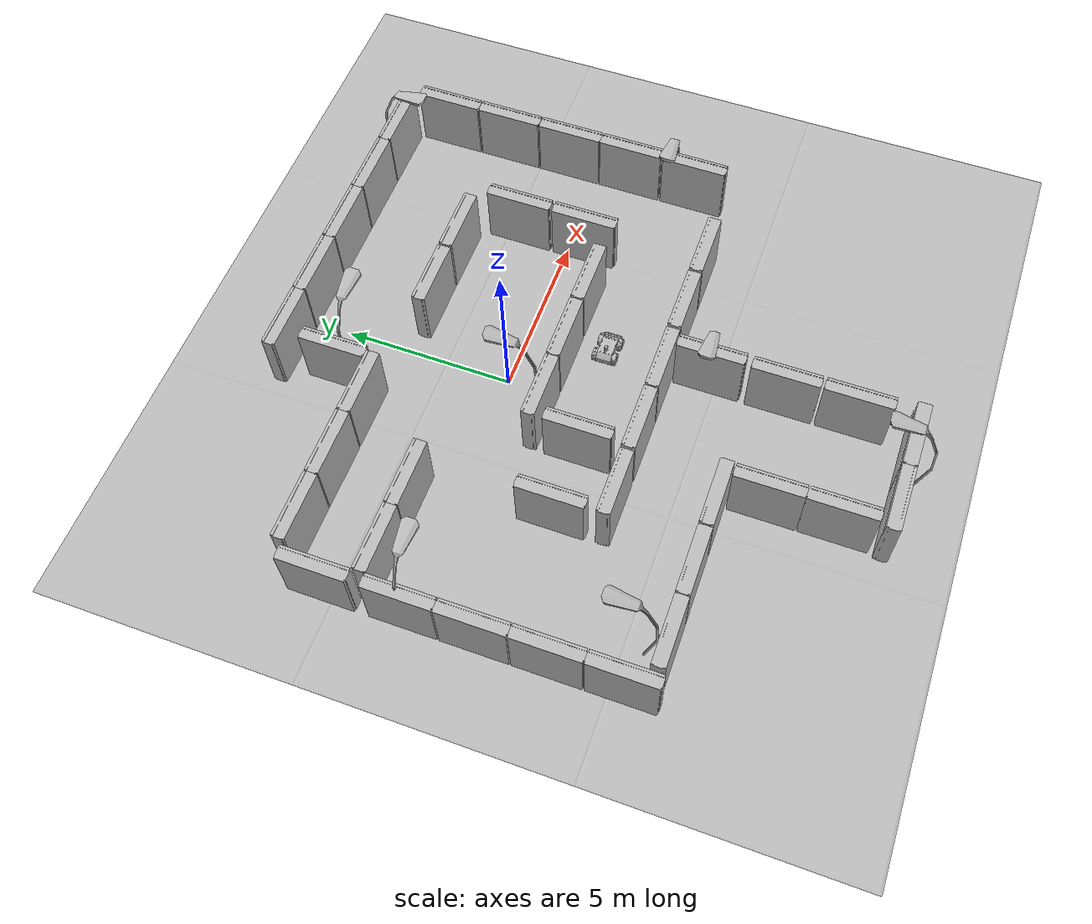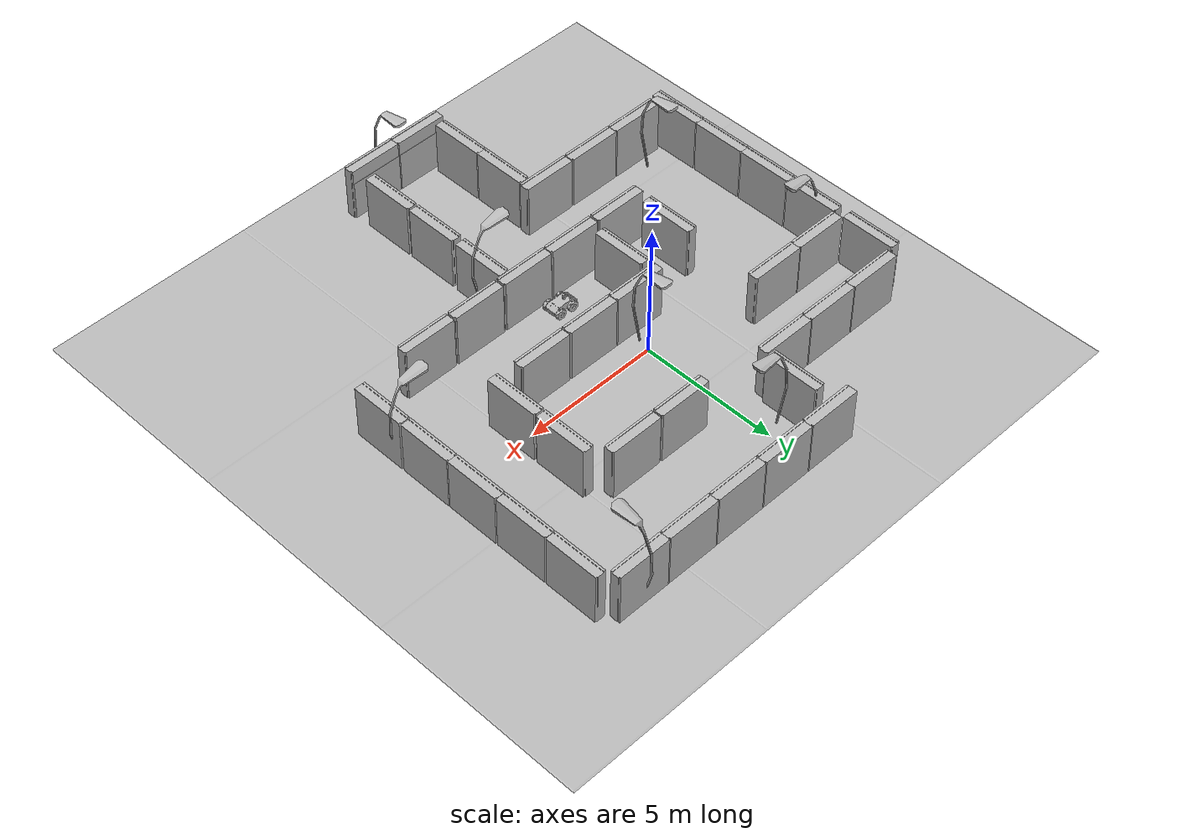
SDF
<sdf version="1.7">
 <world name="default">
  <gravity>0 0 -9.8</gravity>
  <magnetic_field>6e-06 2.3e-05 -4.2e-05</magnetic_field>
  <atmosphere type="adiabatic"/>
  <physics name="default_physics" default="0" type="ode">
   <max_step_size>0.001</max_step_size>
   <real_time_factor>1</real_time_factor>
   <real_time_update_rate>1000</real_time_update_rate>
  </physics>
  <scene><ambient>0.4 0.4 0.4 1</ambient><background>0.7 0.7 0.7 1</background><shadows>1</shadows></scene>
  <audio><device>default</device></audio>
  <spherical_coordinates>
   <surface_model>EARTH_WGS84</surface_model>
   <latitude_deg>0</latitude_deg>
   <longitude_deg>0</longitude_deg>
   <elevation>0</elevation>
   <heading_deg>0</heading_deg>
  </spherical_coordinates>
  <light name="sun" type="directional">
   <pose>-0.80127 -1.47128 11.378 0 -0 0</pose>
   <diffuse>155 155 155 1</diffuse>
   <specular>0.1 0.1 0.1 1</specular>
   <direction>0.61137 -0.26384 -0.6</direction>
   <attenuation>
    <range>1000</range>
    <constant>0.9</constant>
    <linear>0.01</linear>
    <quadratic>0.001</quadratic>
   </attenuation>
   <spot><inner_angle>0</inner_angle><outer_angle>0</outer_angle><falloff>0</falloff></spot>
  </light>
  <model name="concretewall1_0">
   <static>1</static>
   <link name="concretewall::body">
    <collision name="concretewall_COLL">
     <pose>0 0 1 0 -0 0</pose>
     <geometry><box><size>2 0.4 2</size></box></geometry>
    </collision>
    <visual name="concretewall1">
     <geometry>
      <mesh><uri>model://concretewall1/meshes/concretewall1.dae</uri><scale>1 1 1</scale></mesh>
     </geometry>
    </visual>
    <velocity_decay><linear>0</linear><angular>0</angular></velocity_decay>
   </link>
   <pose>1.30669 -4.14375 -0.32657 0 -0 0</pose>
  </model>
  <model name="concretewall1_1">
   <static>1</static>
   <link name="concretewall::body">
    <collision name="concretewall_COLL">
     <pose>0 0 1 0 -0 0</pose>
     <geometry><box><size>2 0.4 2</size></box></geometry>
    </collision>
    <visual name="concretewall1">
     <geometry>
      <mesh><uri>model://concretewall1/meshes/concretewall1.dae</uri><scale>1 1 1</scale></mesh>
     </geometry>
    </visual>
    <velocity_decay><linear>0</linear><angular>0</angular></velocity_decay>
   </link>
   <pose>3.37516 -4.14375 -0.32657 0 -0 0</pose>
  </model>
  <model name="concretewall1_2">
   <static>1</static>
   <link name="concretewall::body">
    <collision name="concretewall_COLL">
     <pose>0 0 1 0 -0 0</pose>
     <geometry><box><size>2 0.4 2</size></box></geometry>
    </collision>
    <visual name="concretewall1">
     <geometry>
      <mesh><uri>model://concretewall1/meshes/concretewall1.dae</uri><scale>1 1 1</scale></mesh>
     </geometry>
    </visual>
    <velocity_decay><linear>0</linear><angular>0</angular></velocity_decay>
   </link>
   <pose>1.34419 -1.23993 -0.32657 0 -0 0</pose>
  </model>
  <model name="concretewall1_30">
   <static>1</static>
   <link name="concretewall::body">
    <collision name="concretewall_COLL">
     <pose>0 0 1 0 -0 0</pose>
     <geometry><box><size>2 0.4 2</size></box></geometry>
    </collision>
    <visual name="concretewall1">
     <geometry>
      <mesh><uri>model://concretewall1/meshes/concretewall1.dae</uri><scale>1 1 1</scale></mesh>
     </geometry>
    </visual>
    <velocity_decay><linear>0</linear><angular>0</angular></velocity_decay>
   </link>
   <pose>-7.57726 2.34565 -0.327 0 -0 1.57</pose>
  </model>
  <model name="concretewall1_5">
   <static>1</static>
   <link name="concretewall::body">
    <collision name="concretewall_COLL">
     <pose>0 0 1 0 -0 0</pose>
     <geometry><box><size>2 0.4 2</size></box></geometry>
    </collision>
    <visual name="concretewall1">
     <geometry>
      <mesh><uri>model://concretewall1/meshes/concretewall1.dae</uri><scale>1 1 1</scale></mesh>
     </geometry>
    </visual>
    <velocity_decay><linear>0</linear><angular>0</angular></velocity_decay>
   </link>
   <pose>5.43259 -4.14375 -0.32657 0 -0 0</pose>
  </model>
  <model name="concretewall1_6">
   <static>1</static>
   <link name="concretewall::body">
    <collision name="concretewall_COLL">
     <pose>0 0 1 0 -0 0</pose>
     <geometry><box><size>2 0.4 2</size></box></geometry>
    </collision>
    <visual name="concretewall1">
     <geometry>
      <mesh><uri>model://concretewall1/meshes/concretewall1.dae</uri><scale>1 1 1</scale></mesh>
     </geometry>
    </visual>
    <velocity_decay><linear>0</linear><angular>0</angular></velocity_decay>
   </link>
   <pose>8.27908 -2.95649 -0.32657 0 -0 1.57</pose>
  </model>
  <model name="concretewall1_35">
   <static>1</static>
   <link name="concretewall::body">
    <collision name="concretewall_COLL">
     <pose>0 0 1 0 -0 0</pose>
     <geometry><box><size>2 0.4 2</size></box></geometry>
    </collision>
    <visual name="concretewall1">
     <geometry>
      <mesh><uri>model://concretewall1/meshes/concretewall1.dae</uri><scale>1 1 1</scale></mesh>
     </geometry>
    </visual>
    <velocity_decay><linear>0</linear><angular>0</angular></velocity_decay>
   </link>
   <pose>1.96683 -5.37531 -0.32657 0 -0 1.57</pose>
  </model>
  <model name="concretewall1_8">
   <static>1</static>
   <link name="concretewall::body">
    <collision name="concretewall_COLL">
     <pose>0 0 1 0 -0 0</pose>
     <geometry><box><size>2 0.4 2</size></box></geometry>
    </collision>
    <visual name="concretewall1">
     <geometry>
      <mesh><uri>model://concretewall1/meshes/concretewall1.dae</uri><scale>1 1 1</scale></mesh>
     </geometry>
    </visual>
    <velocity_decay><linear>0</linear><angular>0</angular></velocity_decay>
   </link>
   <pose>8.27908 -0.92163 -0.32657 0 -0 1.57</pose>
  </model>
  <model name="concretewall1_9">
   <static>1</static>
   <link name="concretewall::body">
    <collision name="concretewall_COLL">
     <pose>0 0 1 0 -0 0</pose>
     <geometry><box><size>2 0.4 2</size></box></geometry>
    </collision>
    <visual name="concretewall1">
     <geometry>
      <mesh><uri>model://concretewall1/meshes/concretewall1.dae</uri><scale>1 1 1</scale></mesh>
     </geometry>
    </visual>
    <velocity_decay><linear>0</linear><angular>0</angular></velocity_decay>
   </link>
   <pose>8.27908 1.07951 -0.32657 0 -0 1.57</pose>
  </model>
  <model name="concretewall1_10">
   <static>1</static>
   <link name="concretewall::body">
    <collision name="concretewall_COLL">
     <pose>0 0 1 0 -0 0</pose>
     <geometry><box><size>2 0.4 2</size></box></geometry>
    </collision>
    <visual name="concretewall1">
     <geometry>
      <mesh><uri>model://concretewall1/meshes/concretewall1.dae</uri><scale>1 1 1</scale></mesh>
     </geometry>
    </visual>
    <velocity_decay><linear>0</linear><angular>0</angular></velocity_decay>
   </link>
   <pose>5.25517 -0.4474 -0.32657 0 -0 1.57</pose>
  </model>
  <model name="concretewall1_11">
   <static>1</static>
   <link name="concretewall::body">
    <collision name="concretewall_COLL">
     <pose>0 0 1 0 -0 0</pose>
     <geometry><box><size>2 0.4 2</size></box></geometry>
    </collision>
    <visual name="concretewall1">
     <geometry>
      <mesh><uri>model://concretewall1/meshes/concretewall1.dae</uri><scale>1 1 1</scale></mesh>
     </geometry>
    </visual>
    <velocity_decay><linear>0</linear><angular>0</angular></velocity_decay>
   </link>
   <pose>5.2584 1.61765 -0.32657 0 -0 1.57</pose>
  </model>
  <model name="concretewall1_16">
   <static>1</static>
   <link name="concretewall::body">
    <collision name="concretewall_COLL">
     <pose>0 0 1 0 -0 0</pose>
     <geometry><box><size>2 0.4 2</size></box></geometry>
    </collision>
    <visual name="concretewall1">
     <geometry>
      <mesh><uri>model://concretewall1/meshes/concretewall1.dae</uri><scale>1 1 1</scale></mesh>
     </geometry>
    </visual>
    <velocity_decay><linear>0</linear><angular>0</angular></velocity_decay>
   </link>
   <pose>3.86846 3.04102 -0.32657 0 -0 0</pose>
  </model>
  <model name="concretewall1_17">
   <static>1</static>
   <link name="concretewall::body">
    <collision name="concretewall_COLL">
     <pose>0 0 1 0 -0 0</pose>
     <geometry><box><size>2 0.4 2</size></box></geometry>
    </collision>
    <visual name="concretewall1">
     <geometry>
      <mesh><uri>model://concretewall1/meshes/concretewall1.dae</uri><scale>1 1 1</scale></mesh>
     </geometry>
    </visual>
    <velocity_decay><linear>0</linear><angular>0</angular></velocity_decay>
   </link>
   <pose>1.81901 3.04102 -0.32657 0 -0 0</pose>
  </model>
  <model name="concretewall1_14">
   <static>1</static>
   <link name="concretewall::body">
    <collision name="concretewall_COLL">
     <geometry>
      <mesh><uri>model://concretewall1/meshes/concretewall1.dae</uri><scale>1 1 1</scale></mesh>
     </geometry>
    </collision>
    <visual name="concretewall1">
     <geometry>
      <mesh><uri>model://concretewall1/meshes/concretewall1.dae</uri><scale>1 1 1</scale></mesh>
     </geometry>
    </visual>
    <velocity_decay><linear>0</linear><angular>0</angular></velocity_decay>
   </link>
   <pose>-1.43966 -7.99693 -0.32657 0 -0 1.57</pose>
  </model>
  <model name="concretewall1_19">
   <static>1</static>
   <link name="concretewall::body">
    <collision name="concretewall_COLL">
     <pose>0 0 1 0 -0 0</pose>
     <geometry><box><size>2 0.4 2</size></box></geometry>
    </collision>
    <visual name="concretewall1">
     <geometry>
      <mesh><uri>model://concretewall1/meshes/concretewall1.dae</uri><scale>1 1 1</scale></mesh>
     </geometry>
    </visual>
    <velocity_decay><linear>0</linear><angular>0</angular></velocity_decay>
   </link>
   <pose>-0.726411 -4.14375 -0.32657 0 -0 0</pose>
  </model>
  <model name="concretewall1_4">
   <static>1</static>
   <link name="concretewall::body">
    <collision name="concretewall_COLL">
     <pose>0 0 1 0 -0 0</pose>
     <geometry><box><size>2 0.4 2</size></box></geometry>
    </collision>
    <visual name="concretewall1">
     <geometry>
      <mesh><uri>model://concretewall1/meshes/concretewall1.dae</uri><scale>1 1 1</scale></mesh>
     </geometry>
    </visual>
    <velocity_decay><linear>0</linear><angular>0</angular></velocity_decay>
   </link>
   <pose>-2.23807 3.49212 -0.32657 0 -0 0</pose>
  </model>
  <model name="concretewall1_31">
   <static>1</static>
   <link name="concretewall::body">
    <collision name="concretewall_COLL">
     <pose>0 0 1 0 -0 0</pose>
     <geometry><box><size>2 0.4 2</size></box></geometry>
    </collision>
    <visual name="concretewall1">
     <geometry>
      <mesh><uri>model://concretewall1/meshes/concretewall1.dae</uri><scale>1 1 1</scale></mesh>
     </geometry>
    </visual>
    <velocity_decay><linear>0</linear><angular>0</angular></velocity_decay>
   </link>
   <pose>-2.79293 -4.14375 -0.32657 0 -0 0</pose>
  </model>
  <model name="concretewall1_32">
   <static>1</static>
   <link name="concretewall::body">
    <collision name="concretewall_COLL">
     <pose>0 0 1 0 -0 0</pose>
     <geometry><box><size>2 0.4 2</size></box></geometry>
    </collision>
    <visual name="concretewall1">
     <geometry>
      <mesh><uri>model://concretewall1/meshes/concretewall1.dae</uri><scale>1 1 1</scale></mesh>
     </geometry>
    </visual>
    <velocity_decay><linear>0</linear><angular>0</angular></velocity_decay>
   </link>
   <pose>-6.24051 -6.75509 -0.32657 0 -0 0</pose>
  </model>
  <model name="concretewall1_34">
   <static>1</static>
   <link name="concretewall::body">
    <collision name="concretewall_COLL">
     <pose>0 0 1 0 -0 0</pose>
     <geometry><box><size>2 0.4 2</size></box></geometry>
    </collision>
    <visual name="concretewall1">
     <geometry>
      <mesh><uri>model://concretewall1/meshes/concretewall1.dae</uri><scale>1 1 1</scale></mesh>
     </geometry>
    </visual>
    <velocity_decay><linear>0</linear><angular>0</angular></velocity_decay>
   </link>
   <pose>-2.19737 -6.75509 -0.32657 0 -0 0</pose>
  </model>
  <model name="concretewall1_33">
   <static>1</static>
   <link name="concretewall::body">
    <collision name="concretewall_COLL">
     <pose>0 0 1 0 -0 0</pose>
     <geometry><box><size>2 0.4 2</size></box></geometry>
    </collision>
    <visual name="concretewall1">
     <geometry>
      <mesh><uri>model://concretewall1/meshes/concretewall1.dae</uri><scale>1 1 1</scale></mesh>
     </geometry>
    </visual>
    <velocity_decay><linear>0</linear><angular>0</angular></velocity_decay>
   </link>
   <pose>-4.2301 -6.75509 -0.32657 0 -0 0</pose>
  </model>
  <model name="concretewall1_12">
   <static>1</static>
   <link name="concretewall::body">
    <collision name="concretewall_COLL">
     <pose>0 0 1 0 -0 0</pose>
     <geometry><box><size>2 0.4 2</size></box></geometry>
    </collision>
    <visual name="concretewall1">
     <geometry>
      <mesh><uri>model://concretewall1/meshes/concretewall1.dae</uri><scale>1 1 1</scale></mesh>
     </geometry>
    </visual>
    <velocity_decay><linear>0</linear><angular>0</angular></velocity_decay>
   </link>
   <pose>1.94936 -7.54369 -0.32657 0 -0 1.57</pose>
  </model>
  <model name="concretewall1_13">
   <static>1</static>
   <link name="concretewall::body">
    <collision name="concretewall_COLL">
     <pose>0 0 1 0 -0 0</pose>
     <geometry><box><size>2 0.4 2</size></box></geometry>
    </collision>
    <visual name="concretewall1">
     <geometry>
      <mesh><uri>model://concretewall1/meshes/concretewall1.dae</uri><scale>1 1 1</scale></mesh>
     </geometry>
    </visual>
    <velocity_decay><linear>0</linear><angular>0</angular></velocity_decay>
   </link>
   <pose>8.27908 3.09153 -0.32657 0 -0 1.57</pose>
  </model>
  <model name="future_lamp_0">
   <static>1</static>
   <link name="future_lamp::body">
    <collision name="lamp_COLL">
     <geometry>
      <mesh><uri>model://future_lamp/meshes/future_lamp-coll.dae</uri><scale>1 1 1</scale></mesh>
     </geometry>
    </collision>
    <visual name="lamp">
     <geometry><mesh><uri>model://future_lamp/meshes/future_lamp.dae</uri><scale>1 1 1</scale></mesh></geometry>
    </visual>
    <velocity_decay><linear>0</linear><angular>0</angular></velocity_decay>
    <visual name="screen_glass">
     <cast_shadows>0</cast_shadows>
     <geometry>
      <mesh><uri>model://future_lamp/meshes/future_lamp_emission.dae</uri><scale>1 1 1</scale></mesh>
     </geometry>
     <material>
      <script><uri>file://media/materials/scripts/gazebo.material</uri><name>Gazebo/White</name></script>
     </material>
    </visual>
   </link>
   <pose>7.92129 -2.46974 -0.211649 0 -0 0</pose>
  </model>
  <model name="concretewall1_26">
   <static>1</static>
   <link name="concretewall::body">
    <collision name="concretewall_COLL">
     <pose>0 0 1 0 -0 0</pose>
     <geometry><box><size>2 0.4 2</size></box></geometry>
    </collision>
    <visual name="concretewall1">
     <geometry>
      <mesh><uri>model://concretewall1/meshes/concretewall1.dae</uri><scale>1 1 1</scale></mesh>
     </geometry>
    </visual>
    <velocity_decay><linear>0</linear><angular>0</angular></velocity_decay>
   </link>
   <pose>-6.36882 1.14849 -0.32657 0 -0 0</pose>
  </model>
  <model name="concretewall1_21">
   <static>1</static>
   <link name="concretewall::body">
    <collision name="concretewall_COLL">
     <pose>0 0 1 0 -0 0</pose>
     <geometry><box><size>2 0.4 2</size></box></geometry>
    </collision>
    <visual name="concretewall1">
     <geometry>
      <mesh><uri>model://concretewall1/meshes/concretewall1.dae</uri><scale>1 1 1</scale></mesh>
     </geometry>
    </visual>
    <velocity_decay><linear>0</linear><angular>0</angular></velocity_decay>
   </link>
   <pose>-0.67205 -1.23993 -0.32657 0 -0 0</pose>
  </model>
  <model name="concretewall1_20">
   <static>1</static>
   <link name="concretewall::body">
    <collision name="concretewall_COLL">
     <pose>0 0 1 0 -0 0</pose>
     <geometry><box><size>2 0.4 2</size></box></geometry>
    </collision>
    <visual name="concretewall1">
     <geometry>
      <mesh><uri>model://concretewall1/meshes/concretewall1.dae</uri><scale>1 1 1</scale></mesh>
     </geometry>
    </visual>
    <velocity_decay><linear>0</linear><angular>0</angular></velocity_decay>
   </link>
   <pose>-1.48849 -2.65043 -0.32657 0 -0 1.57</pose>
  </model>
  <model name="future_lamp_2">
   <static>1</static>
   <link name="future_lamp::body">
    <collision name="lamp_COLL">
     <geometry>
      <mesh><uri>model://future_lamp/meshes/future_lamp-coll.dae</uri><scale>1 1 1</scale></mesh>
     </geometry>
    </collision>
    <visual name="lamp">
     <geometry><mesh><uri>model://future_lamp/meshes/future_lamp.dae</uri><scale>1 1 1</scale></mesh></geometry>
    </visual>
    <velocity_decay><linear>0</linear><angular>0</angular></velocity_decay>
    <visual name="screen_glass">
     <cast_shadows>0</cast_shadows>
     <geometry>
      <mesh><uri>model://future_lamp/meshes/future_lamp_emission.dae</uri><scale>1 1 1</scale></mesh>
     </geometry>
     <material>
      <script><uri>file://media/materials/scripts/gazebo.material</uri><name>Gazebo/White</name></script>
     </material>
    </visual>
   </link>
   <pose>-0.479511 4.74445 -0.21165 0 -0 3.14</pose>
  </model>
  <model name="future_lamp_3">
   <static>1</static>
   <link name="future_lamp::body">
    <collision name="lamp_COLL">
     <geometry>
      <mesh><uri>model://future_lamp/meshes/future_lamp-coll.dae</uri><scale>1 1 1</scale></mesh>
     </geometry>
    </collision>
    <visual name="lamp">
     <geometry><mesh><uri>model://future_lamp/meshes/future_lamp.dae</uri><scale>1 1 1</scale></mesh></geometry>
    </visual>
    <velocity_decay><linear>0</linear><angular>0</angular></velocity_decay>
    <visual name="screen_glass">
     <cast_shadows>0</cast_shadows>
     <geometry>
      <mesh><uri>model://future_lamp/meshes/future_lamp_emission.dae</uri><scale>1 1 1</scale></mesh>
     </geometry>
     <material>
      <script><uri>file://media/materials/scripts/gazebo.material</uri><name>Gazebo/White</name></script>
     </material>
    </visual>
   </link>
   <pose>-0.44511 -0.4087 -0.21165 0 0 -1.57</pose>
  </model>
  <model name="future_lamp_1">
   <static>1</static>
   <link name="future_lamp::body">
    <collision name="lamp_COLL">
     <geometry>
      <mesh><uri>model://future_lamp/meshes/future_lamp-coll.dae</uri><scale>1 1 1</scale></mesh>
     </geometry>
    </collision>
    <visual name="lamp">
     <geometry><mesh><uri>model://future_lamp/meshes/future_lamp.dae</uri><scale>1 1 1</scale></mesh></geometry>
    </visual>
    <velocity_decay><linear>0</linear><angular>0</angular></velocity_decay>
    <visual name="screen_glass">
     <cast_shadows>0</cast_shadows>
     <geometry>
      <mesh><uri>model://future_lamp/meshes/future_lamp_emission.dae</uri><scale>1 1 1</scale></mesh>
     </geometry>
     <material>
      <script><uri>file://media/materials/scripts/gazebo.material</uri><name>Gazebo/White</name></script>
     </material>
    </visual>
   </link>
   <pose>7.02269 6.12983 -0.21165 0 -0 1.57</pose>
  </model>
  <model name="future_lamp_6">
   <static>1</static>
   <link name="future_lamp::body">
    <collision name="lamp_COLL">
     <geometry>
      <mesh><uri>model://future_lamp/meshes/future_lamp-coll.dae</uri><scale>1 1 1</scale></mesh>
     </geometry>
    </collision>
    <visual name="lamp">
     <geometry><mesh><uri>model://future_lamp/meshes/future_lamp.dae</uri><scale>1 1 1</scale></mesh></geometry>
    </visual>
    <velocity_decay><linear>0</linear><angular>0</angular></velocity_decay>
    <visual name="screen_glass">
     <cast_shadows>0</cast_shadows>
     <geometry>
      <mesh><uri>model://future_lamp/meshes/future_lamp_emission.dae</uri><scale>1 1 1</scale></mesh>
     </geometry>
     <material>
      <script><uri>file://media/materials/scripts/gazebo.material</uri><name>Gazebo/White</name></script>
     </material>
    </visual>
   </link>
   <pose>1.72471 -5.54033 -0.21165 0 -0 0</pose>
  </model>
  <model name="future_lamp_7">
   <static>1</static>
   <link name="future_lamp::body">
    <collision name="lamp_COLL">
     <geometry>
      <mesh><uri>model://future_lamp/meshes/future_lamp-coll.dae</uri><scale>1 1 1</scale></mesh>
     </geometry>
    </collision>
    <visual name="lamp">
     <geometry><mesh><uri>model://future_lamp/meshes/future_lamp.dae</uri><scale>1 1 1</scale></mesh></geometry>
    </visual>
    <velocity_decay><linear>0</linear><angular>0</angular></velocity_decay>
    <visual name="screen_glass">
     <cast_shadows>0</cast_shadows>
     <geometry>
      <mesh><uri>model://future_lamp/meshes/future_lamp_emission.dae</uri><scale>1 1 1</scale></mesh>
     </geometry>
     <material>
      <script><uri>file://media/materials/scripts/gazebo.material</uri><name>Gazebo/White</name></script>
     </material>
    </visual>
   </link>
   <pose>0.442044 -11.3372 0.014168 0 0 -1.57</pose>
  </model>
  <model name="concretewall1_29">
   <static>1</static>
   <link name="concretewall::body">
    <collision name="concretewall_COLL">
     <pose>0 0 1 0 -0 0</pose>
     <geometry><box><size>2 0.4 2</size></box></geometry>
    </collision>
    <visual name="concretewall1">
     <geometry>
      <mesh><uri>model://concretewall1/meshes/concretewall1.dae</uri><scale>1 1 1</scale></mesh>
     </geometry>
    </visual>
    <velocity_decay><linear>0</linear><angular>0</angular></velocity_decay>
   </link>
   <pose>-3.63262 -2.65043 -0.37621 0 -0 1.57</pose>
  </model>
  <model name="concretewall1_28">
   <static>1</static>
   <link name="concretewall::body">
    <collision name="concretewall_COLL">
     <pose>0 0 1 0 -0 0</pose>
     <geometry><box><size>2 0.4 2</size></box></geometry>
    </collision>
    <visual name="concretewall1">
     <geometry>
      <mesh><uri>model://concretewall1/meshes/concretewall1.dae</uri><scale>1 1 1</scale></mesh>
     </geometry>
    </visual>
    <velocity_decay><linear>0</linear><angular>0</angular></velocity_decay>
   </link>
   <pose>-1.3156 4.70773 -0.32657 0 -0 1.57</pose>
  </model>
  <model name="future_lamp_4">
   <static>1</static>
   <link name="future_lamp::body">
    <collision name="lamp_COLL">
     <geometry>
      <mesh><uri>model://future_lamp/meshes/future_lamp-coll.dae</uri><scale>1 1 1</scale></mesh>
     </geometry>
    </collision>
    <visual name="lamp">
     <geometry><mesh><uri>model://future_lamp/meshes/future_lamp.dae</uri><scale>1 1 1</scale></mesh></geometry>
    </visual>
    <velocity_decay><linear>0</linear><angular>0</angular></velocity_decay>
    <visual name="screen_glass">
     <cast_shadows>0</cast_shadows>
     <geometry>
      <mesh><uri>model://future_lamp/meshes/future_lamp_emission.dae</uri><scale>1 1 1</scale></mesh>
     </geometry>
     <material>
      <script><uri>file://media/materials/scripts/gazebo.material</uri><name>Gazebo/White</name></script>
     </material>
    </visual>
   </link>
   <pose>-6.9612 0.20517 -0.21165 0 -0 3.1415</pose>
  </model>
  <model name="future_lamp_5">
   <static>1</static>
   <link name="future_lamp::body">
    <collision name="lamp_COLL">
     <geometry>
      <mesh><uri>model://future_lamp/meshes/future_lamp-coll.dae</uri><scale>1 1 1</scale></mesh>
     </geometry>
    </collision>
    <visual name="lamp">
     <geometry><mesh><uri>model://future_lamp/meshes/future_lamp.dae</uri><scale>1 1 1</scale></mesh></geometry>
    </visual>
    <velocity_decay><linear>0</linear><angular>0</angular></velocity_decay>
    <visual name="screen_glass">
     <cast_shadows>0</cast_shadows>
     <geometry>
      <mesh><uri>model://future_lamp/meshes/future_lamp_emission.dae</uri><scale>1 1 1</scale></mesh>
     </geometry>
     <material>
      <script><uri>file://media/materials/scripts/gazebo.material</uri><name>Gazebo/White</name></script>
     </material>
    </visual>
   </link>
   <pose>-6.4735 -5.88678 -0.21165 0 0 -1.57</pose>
  </model>
  <model name="concretewall1_7">
   <static>1</static>
   <link name="concretewall::body">
    <collision name="concretewall_COLL">
     <pose>0 0 1 0 -0 0</pose>
     <geometry><box><size>2 0.4 2</size></box></geometry>
    </collision>
    <visual name="concretewall1">
     <geometry>
      <mesh><uri>model://concretewall1/meshes/concretewall1.dae</uri><scale>1 1 1</scale></mesh>
     </geometry>
    </visual>
    <velocity_decay><linear>0</linear><angular>0</angular></velocity_decay>
   </link>
   <pose>8.27907 5.10898 -0.32657 0 -0 1.57</pose>
  </model>
  <model name="concretewall1_3">
   <static>1</static>
   <link name="concretewall::body">
    <collision name="concretewall_COLL">
     <pose>0 0 1 0 -0 0</pose>
     <geometry><box><size>2 0.4 2</size></box></geometry>
    </collision>
    <visual name="concretewall1">
     <geometry>
      <mesh><uri>model://concretewall1/meshes/concretewall1.dae</uri><scale>1 1 1</scale></mesh>
     </geometry>
    </visual>
    <velocity_decay><linear>0</linear><angular>0</angular></velocity_decay>
   </link>
   <pose>3.37926 -1.23993 -0.32657 0 -0 0</pose>
  </model>
  <light name="spotlight_0" type="spot">
   <pose>7.07424 -2.47124 2.80354 0 -0.63253 0</pose>
   <diffuse>0 0 1 1</diffuse>
   <specular>0.2 0.2 0.2 1</specular>
   <direction>0 0 -1</direction>
   <attenuation>
    <range>4</range>
    <constant>1</constant>
    <linear>0.02</linear>
    <quadratic>0.001</quadratic>
   </attenuation>
   <spot><inner_angle>1</inner_angle><outer_angle>1</outer_angle><falloff>1</falloff></spot>
   <cast_shadows>0</cast_shadows>
  </light>
  <light name="spotlight_1" type="spot">
   <pose>6.72151 5.23056 2.80354 0.40181 -0 0</pose>
   <diffuse>0 0 1 1</diffuse>
   <specular>0.2 0.2 0.2 1</specular>
   <direction>0 0 -1</direction>
   <attenuation>
    <range>4</range>
    <constant>0.8</constant>
    <linear>0.01</linear>
    <quadratic>0.001</quadratic>
   </attenuation>
   <spot><inner_angle>1</inner_angle><outer_angle>1</outer_angle><falloff>1</falloff></spot>
   <cast_shadows>0</cast_shadows>
  </light>
  <light name="spotlight_2" type="spot">
   <pose>-0.05874 4.69112 2.80354 0 0.34808 0</pose>
   <diffuse>0 0 1 1</diffuse>
   <specular>0.2 0.2 0.2 1</specular>
   <direction>0 0 -1</direction>
   <attenuation>
    <range>4</range>
    <constant>0.8</constant>
    <linear>0.01</linear>
    <quadratic>0.001</quadratic>
   </attenuation>
   <spot><inner_angle>1</inner_angle><outer_angle>1</outer_angle><falloff>1</falloff></spot>
  </light>
  <light name="spotlight_3" type="spot">
   <pose>-0.28349 -0.04642 2.80354 -0.23301 -0 0</pose>
   <diffuse>0 0 1 1</diffuse>
   <specular>0.2 0.2 0.2 1</specular>
   <direction>0 0 -1</direction>
   <attenuation>
    <range>4</range>
    <constant>0.8</constant>
    <linear>0.01</linear>
    <quadratic>0.001</quadratic>
   </attenuation>
   <spot><inner_angle>2</inner_angle><outer_angle>2</outer_angle><falloff>1</falloff></spot>
  </light>
  <light name="spotlight_4" type="spot">
   <pose>-6.04052 0.03868 2.80354 0 0.50012 0</pose>
   <diffuse>0 0 1 1</diffuse>
   <specular>0.2 0.2 0.2 1</specular>
   <direction>0 0 -1</direction>
   <attenuation>
    <range>4</range>
    <constant>0.8</constant>
    <linear>0.01</linear>
    <quadratic>0.001</quadratic>
   </attenuation>
   <spot><inner_angle>1</inner_angle><outer_angle>1</outer_angle><falloff>1</falloff></spot>
  </light>
  <light name="spotlight_5" type="spot">
   <pose>-6.26486 -5.27743 2.80354 -0.34211 -0 0</pose>
   <diffuse>0 0 1 1</diffuse>
   <specular>0.2 0.2 0.2 1</specular>
   <direction>0 0 -1</direction>
   <attenuation>
    <range>4</range>
    <constant>0.8</constant>
    <linear>0.01</linear>
    <quadratic>0.001</quadratic>
   </attenuation>
   <spot><inner_angle>1</inner_angle><outer_angle>1</outer_angle><falloff>1</falloff></spot>
  </light>
  <light name="spotlight_6" type="spot">
   <pose>0.76868 -5.38456 2.80354 0 -0.47097 0</pose>
   <diffuse>0 0 1 1</diffuse>
   <specular>0.2 0.2 0.2 1</specular>
   <direction>0 0 -1</direction>
   <attenuation>
    <range>4</range>
    <constant>0.8</constant>
    <linear>0.01</linear>
    <quadratic>0.001</quadratic>
   </attenuation>
   <spot><inner_angle>1</inner_angle><outer_angle>1</outer_angle><falloff>1</falloff></spot>
  </light>
  <light name="spotlight_7" type="spot">
   <pose>0.532714 -11.1621 2.89741 0 -0 0</pose>
   <diffuse>0 0 1 1</diffuse>
   <specular>0.2 0.2 0.2 1</specular>
   <direction>0 0 -1</direction>
   <attenuation>
    <range>4</range>
    <constant>0.8</constant>
    <linear>0.01</linear>
    <quadratic>0.001</quadratic>
   </attenuation>
   <spot><inner_angle>1</inner_angle><outer_angle>1</outer_angle><falloff>1</falloff></spot>
  </light>
  <light name="spotlight_8" type="spot">
   <pose>0.484453 -8.68082 4.01946 0 -0 0</pose>
   <diffuse>0.5 0.5 0.5 1</diffuse>
   <specular>0.1 0.1 0.1 1</specular>
   <direction>0 0 -1</direction>
   <attenuation>
    <range>4</range>
    <constant>0.5</constant>
    <linear>0.01</linear>
    <quadratic>0.001</quadratic>
   </attenuation>
   <spot><inner_angle>1</inner_angle><outer_angle>1</outer_angle><falloff>1</falloff></spot>
  </light>
  <model name="large_concrete_ground_0">
   <pose>1.39291 -1.81766 -0.327 0 -0 0</pose>
   <frame name="largeconcreteground::__model__" attached_to="largeconcreteground::body">
    <pose relative_to="__model__">0 0 0 0 -0 0</pose>
   </frame>
   <static>1</static>
   <link name="largeconcreteground::body">
    <collision name="largeconcreteground-collision">
     <pose>0 0 0.016 0 -0 0</pose>
     <geometry><box><size>22.938 22.954 0.016</size></box></geometry>
    </collision>
    <visual name="largeconcreteground">
     <geometry><mesh><uri>model://large_concrete_ground/meshes/largeconcreteground.dae</uri></mesh></geometry>
    </visual>
    <velocity_decay><linear>0</linear><angular>0</angular></velocity_decay>
    <pose relative_to="largeconcreteground::__model__">0 0 0 0 -0 0</pose>
   </link>
  </model>
  <model name="concrete_wall_0">
   <pose>7.021 6.393 -0.327 0 -0 0</pose>
   <frame name="concretewall::__model__" attached_to="concretewall::body">
    <pose relative_to="__model__">0 0 0 0 -0 0</pose>
   </frame>
   <static>1</static>
   <link name="concretewall::body">
    <collision name="concretewall_COLL">
     <pose>0 0 1 0 -0 0</pose>
     <geometry><box><size>2 0.4 2</size></box></geometry>
    </collision>
    <visual name="concretewall1">
     <geometry><mesh><uri>model://concretewall1/meshes/concretewall1.dae</uri></mesh></geometry>
    </visual>
    <velocity_decay><linear>0</linear><angular>0</angular></velocity_decay>
    <pose relative_to="concretewall::__model__">0 0 0 0 -0 0</pose>
   </link>
  </model>
  <model name="concrete_wall_0_0">
   <pose>5.021 6.393 -0.327 0 -0 0</pose>
   <frame name="concretewall::__model__" attached_to="concretewall::body">
    <pose relative_to="__model__">0 0 0 0 -0 0</pose>
   </frame>
   <static>1</static>
   <link name="concretewall::body">
    <collision name="concretewall_COLL">
     <pose>0 0 1 0 -0 0</pose>
     <geometry><box><size>2 0.4 2</size></box></geometry>
    </collision>
    <visual name="concretewall1">
     <geometry><mesh><uri>model://concretewall1/meshes/concretewall1.dae</uri></mesh></geometry>
    </visual>
    <velocity_decay><linear>0</linear><angular>0</angular></velocity_decay>
    <pose relative_to="concretewall::__model__">0 0 0 0 -0 0</pose>
   </link>
  </model>
  <model name="concrete_wall_0_0_0">
   <pose>3.021 6.393 -0.327 0 -0 0</pose>
   <frame name="concretewall::__model__" attached_to="concretewall::body">
    <pose relative_to="__model__">0 0 0 0 -0 0</pose>
   </frame>
   <static>1</static>
   <link name="concretewall::body">
    <collision name="concretewall_COLL">
     <pose>0 0 1 0 -0 0</pose>
     <geometry><box><size>2 0.4 2</size></box></geometry>
    </collision>
    <visual name="concretewall1">
     <geometry><mesh><uri>model://concretewall1/meshes/concretewall1.dae</uri></mesh></geometry>
    </visual>
    <velocity_decay><linear>0</linear><angular>0</angular></velocity_decay>
    <pose relative_to="concretewall::__model__">0 0 0 0 -0 0</pose>
   </link>
  </model>
  <model name="concrete_wall_0_0_0_0">
   <pose>1.021 6.393 -0.327 0 -0 0</pose>
   <frame name="concretewall::__model__" attached_to="concretewall::body">
    <pose relative_to="__model__">0 0 0 0 -0 0</pose>
   </frame>
   <static>1</static>
   <link name="concretewall::body">
    <collision name="concretewall_COLL">
     <pose>0 0 1 0 -0 0</pose>
     <geometry><box><size>2 0.4 2</size></box></geometry>
    </collision>
    <visual name="concretewall1">
     <geometry><mesh><uri>model://concretewall1/meshes/concretewall1.dae</uri></mesh></geometry>
    </visual>
    <velocity_decay><linear>0</linear><angular>0</angular></velocity_decay>
    <pose relative_to="concretewall::__model__">0 0 0 0 -0 0</pose>
   </link>
  </model>
  <model name="concrete_wall_0_0_0_0_0">
   <pose>-0.979 6.393 -0.327 0 -0 0</pose>
   <frame name="concretewall::__model__" attached_to="concretewall::body">
    <pose relative_to="__model__">0 0 0 0 -0 0</pose>
   </frame>
   <static>1</static>
   <link name="concretewall::body">
    <collision name="concretewall_COLL">
     <pose>0 0 1 0 -0 0</pose>
     <geometry><box><size>2 0.4 2</size></box></geometry>
    </collision>
    <visual name="concretewall1">
     <geometry><mesh><uri>model://concretewall1/meshes/concretewall1.dae</uri></mesh></geometry>
    </visual>
    <velocity_decay><linear>0</linear><angular>0</angular></velocity_decay>
    <pose relative_to="concretewall::__model__">0 0 0 0 -0 0</pose>
   </link>
  </model>
  <model name="concrete_wall_0_0_0_0_0_0">
   <pose>-4.37464 1.14849 -0.32657 0 -0 0</pose>
   <frame name="concretewall::__model__" attached_to="concretewall::body">
    <pose relative_to="__model__">0 0 0 0 -0 0</pose>
   </frame>
   <static>1</static>
   <link name="concretewall::body">
    <collision name="concretewall_COLL">
     <pose>0 0 1 0 -0 0</pose>
     <geometry><box><size>2 0.4 2</size></box></geometry>
    </collision>
    <visual name="concretewall1">
     <geometry><mesh><uri>model://concretewall1/meshes/concretewall1.dae</uri></mesh></geometry>
    </visual>
    <velocity_decay><linear>0</linear><angular>0</angular></velocity_decay>
    <pose relative_to="concretewall::__model__">0 0 0 0 -0 0</pose>
   </link>
  </model>
  <model name="concrete_wall_0_0_0_0_0_0_0">
   <pose>-7.5691 -0.014021 -0.327 0 -0 1.5708</pose>
   <frame name="concretewall::__model__" attached_to="concretewall::body">
    <pose relative_to="__model__">0 0 0 0 -0 0</pose>
   </frame>
   <static>1</static>
   <link name="concretewall::body">
    <collision name="concretewall_COLL">
     <pose>0 0 1 0 -0 0</pose>
     <geometry><box><size>2 0.4 2</size></box></geometry>
    </collision>
    <visual name="concretewall1">
     <geometry><mesh><uri>model://concretewall1/meshes/concretewall1.dae</uri></mesh></geometry>
    </visual>
    <velocity_decay><linear>0</linear><angular>0</angular></velocity_decay>
    <pose relative_to="concretewall::__model__">0 0 0 0 -0 0</pose>
   </link>
  </model>
  <model name="concrete_wall_0_0_0_0_0_0_0_0">
   <pose>-7.5691 -2.01402 -0.327 0 -0 1.5708</pose>
   <frame name="concretewall::__model__" attached_to="concretewall::body">
    <pose relative_to="__model__">0 0 0 0 -0 0</pose>
   </frame>
   <static>1</static>
   <link name="concretewall::body">
    <collision name="concretewall_COLL">
     <pose>0 0 1 0 -0 0</pose>
     <geometry><box><size>2 0.4 2</size></box></geometry>
    </collision>
    <visual name="concretewall1">
     <geometry><mesh><uri>model://concretewall1/meshes/concretewall1.dae</uri></mesh></geometry>
    </visual>
    <velocity_decay><linear>0</linear><angular>0</angular></velocity_decay>
    <pose relative_to="concretewall::__model__">0 0 0 0 -0 0</pose>
   </link>
  </model>
  <model name="concrete_wall_0_0_0_0_0_0_0_0_0">
   <pose>-7.5691 -4.01402 -0.327 0 -0 1.5708</pose>
   <frame name="concretewall::__model__" attached_to="concretewall::body">
    <pose relative_to="__model__">0 0 0 0 -0 0</pose>
   </frame>
   <static>1</static>
   <link name="concretewall::body">
    <collision name="concretewall_COLL">
     <pose>0 0 1 0 -0 0</pose>
     <geometry><box><size>2 0.4 2</size></box></geometry>
    </collision>
    <visual name="concretewall1">
     <geometry><mesh><uri>model://concretewall1/meshes/concretewall1.dae</uri></mesh></geometry>
    </visual>
    <velocity_decay><linear>0</linear><angular>0</angular></velocity_decay>
    <pose relative_to="concretewall::__model__">0 0 0 0 -0 0</pose>
   </link>
  </model>
  <model name="concrete_wall_0_0_0_0_0_0_0_0_0_0">
   <pose>-7.5691 -6.01402 -0.32657 0 -0 1.5708</pose>
   <frame name="concretewall::__model__" attached_to="concretewall::body">
    <pose relative_to="__model__">0 0 0 0 -0 0</pose>
   </frame>
   <static>1</static>
   <link name="concretewall::body">
    <collision name="concretewall_COLL">
     <pose>0 0 1 0 -0 0</pose>
     <geometry><box><size>2 0.4 2</size></box></geometry>
    </collision>
    <visual name="concretewall1">
     <geometry><mesh><uri>model://concretewall1/meshes/concretewall1.dae</uri></mesh></geometry>
    </visual>
    <velocity_decay><linear>0</linear><angular>0</angular></velocity_decay>
    <pose relative_to="concretewall::__model__">0 0 0 0 -0 0</pose>
   </link>
  </model>
  <model name="white_panel_wall_0">
   <pose>-0.750686 -11.344 -0.32657 0 -0 0</pose>
   <frame name="whitepanelwall::__model__" attached_to="whitepanelwall::body">
    <pose relative_to="__model__">0 0 0 0 -0 0</pose>
   </frame>
   <static>1</static>
   <link name="whitepanelwall::body">
    <collision name="whitepanelwall-coll">
     <pose>0 0 1 0 -0 0</pose>
     <geometry><box><size>2 0.4 2</size></box></geometry>
    </collision>
    <visual name="whitepanelwall">
     <geometry><mesh><uri>model://whitepanelwall/meshes/whitepanelwall.dae</uri></mesh></geometry>
    </visual>
    <velocity_decay><linear>0</linear><angular>0</angular></velocity_decay>
    <pose relative_to="whitepanelwall::__model__">0 0 0 0 -0 0</pose>
   </link>
  </model>
  <model name="white_panel_wall_1">
   <pose>1.24931 -11.344 -0.32657 0 -0 0</pose>
   <frame name="whitepanelwall::__model__" attached_to="whitepanelwall::body">
    <pose relative_to="__model__">0 0 0 0 -0 0</pose>
   </frame>
   <static>1</static>
   <link name="whitepanelwall::body">
    <collision name="whitepanelwall-coll">
     <pose>0 0 1 0 -0 0</pose>
     <geometry><box><size>2 0.4 2</size></box></geometry>
    </collision>
    <visual name="whitepanelwall">
     <geometry><mesh><uri>model://whitepanelwall/meshes/whitepanelwall.dae</uri></mesh></geometry>
    </visual>
    <velocity_decay><linear>0</linear><angular>0</angular></velocity_decay>
    <pose relative_to="whitepanelwall::__model__">0 0 0 0 -0 0</pose>
   </link>
  </model>
  <model name="concrete_wall_1">
   <pose>-1.43888 -9.99703 -0.32657 0 0 -1.5708</pose>
   <frame name="concretewall::__model__" attached_to="concretewall::body">
    <pose relative_to="__model__">0 0 0 0 -0 0</pose>
   </frame>
   <static>1</static>
   <link name="concretewall::body">
    <collision name="concretewall_COLL">
     <pose>0 0 1 0 -0 0</pose>
     <geometry><box><size>2 0.4 2</size></box></geometry>
    </collision>
    <visual name="concretewall1">
     <geometry><mesh><uri>model://concretewall1/meshes/concretewall1.dae</uri></mesh></geometry>
    </visual>
    <velocity_decay><linear>0</linear><angular>0</angular></velocity_decay>
    <pose relative_to="concretewall::__model__">0 0 0 0 -0 0</pose>
   </link>
  </model>
  <model name="concrete_wall_1_0">
   <pose>1.95014 -9.61693 -0.32657 0 0 -1.5708</pose>
   <frame name="concretewall::__model__" attached_to="concretewall::body">
    <pose relative_to="__model__">0 0 0 0 -0 0</pose>
   </frame>
   <static>1</static>
   <link name="concretewall::body">
    <collision name="concretewall_COLL">
     <pose>0 0 1 0 -0 0</pose>
     <geometry><box><size>2 0.4 2</size></box></geometry>
    </collision>
    <visual name="concretewall1">
     <geometry><mesh><uri>model://concretewall1/meshes/concretewall1.dae</uri></mesh></geometry>
    </visual>
    <velocity_decay><linear>0</linear><angular>0</angular></velocity_decay>
    <pose relative_to="concretewall::__model__">0 0 0 0 -0 0</pose>
   </link>
  </model>
  <model name="concrete_wall_0_0_0_0_0_0_1">
   <pose>-4.238 3.492 -0.327 0 -0 0</pose>
   <frame name="concretewall::__model__" attached_to="concretewall::body">
    <pose relative_to="__model__">0 0 0 0 -0 0</pose>
   </frame>
   <static>1</static>
   <link name="concretewall::body">
    <collision name="concretewall_COLL">
     <pose>0 0 1 0 -0 0</pose>
     <geometry><box><size>2 0.4 2</size></box></geometry>
    </collision>
    <visual name="concretewall1">
     <geometry><mesh><uri>model://concretewall1/meshes/concretewall1.dae</uri></mesh></geometry>
    </visual>
    <velocity_decay><linear>0</linear><angular>0</angular></velocity_decay>
    <pose relative_to="concretewall::__model__">0 0 0 0 -0 0</pose>
   </link>
  </model>
  <model name="concrete_wall_0_0_0_0_0_0_2">
   <pose>-6.238 3.492 -0.327 0 -0 0</pose>
   <frame name="concretewall::__model__" attached_to="concretewall::body">
    <pose relative_to="__model__">0 0 0 0 -0 0</pose>
   </frame>
   <static>1</static>
   <link name="concretewall::body">
    <collision name="concretewall_COLL">
     <pose>0 0 1 0 -0 0</pose>
     <geometry><box><size>2 0.4 2</size></box></geometry>
    </collision>
    <visual name="concretewall1">
     <geometry><mesh><uri>model://concretewall1/meshes/concretewall1.dae</uri></mesh></geometry>
    </visual>
    <velocity_decay><linear>0</linear><angular>0</angular></velocity_decay>
    <pose relative_to="concretewall::__model__">0 0 0 0 -0 0</pose>
   </link>
  </model>
  <model name="husky_model">
   <link name="base_link">
    <collision name="collision">
     <pose>0 0 0.1 0 -0 0</pose>
     <geometry><box><size>1.0074 0.5709 0.2675</size></box></geometry>
    </collision>
    <inertial>
     <mass>33.855</mass>
     <pose>-0.085613 -0.00084 0.238145 0 -0 0</pose>
     <inertia>
      <ixx>2.2343</ixx>
      <ixy>-0.023642</ixy>
      <ixz>0.275174</ixz>
      <iyy>3.42518</iyy>
      <iyz>0.00239624</iyz>
      <izz>2.1241</izz>
     </inertia>
    </inertial>
    <visual name="body"><geometry><mesh><uri>model://husky_model/meshes/body.dae</uri></mesh></geometry></visual>
   </link>
   <link name="back_left_wheel">
    <pose>-0.256 0.285475 0.035 0 -0 0</pose>
    <inertial>
     <mass>2.6357</mass>
     <inertia>
      <ixx>0.0246688</ixx>
      <ixy>0</ixy>
      <ixz>0</ixz>
      <iyy>0.0246688</iyy>
      <iyz>0</iyz>
      <izz>0.0441058</izz>
     </inertia>
    </inertial>
    <collision name="back_left_wheel_collision">
     <pose>0 0 0 -1.5707 0 0</pose>
     <geometry><cylinder><radius>0.17775</radius><length>0.1143</length></cylinder></geometry>
     <surface>
      <friction><ode><mu>100000</mu><mu2>100000</mu2><slip1>0</slip1><slip2>0</slip2></ode></friction>
     </surface>
    </collision>
    <visual name="back_left_wheel">
     <geometry><mesh><uri>model://husky_model/meshes/wheel.dae</uri></mesh></geometry>
    </visual>
   </link>
   <joint name="back_left_joint" type="revolute">
    <sensor name="back_left_sensor" type="force_torque"/>
    <parent>base_link</parent>
    <child>back_left_wheel</child>
    <axis>
     <xyz expressed_in="__model__">0 1 0</xyz>
     <limit><lower>-1e+16</lower><upper>1e+16</upper></limit>
     <dynamics><spring_reference>0</spring_reference><spring_stiffness>0</spring_stiffness></dynamics>
    </axis>
    <physics><provide_feedback>1</provide_feedback><ode><limit><cfm>0</cfm><erp>0.9</erp></limit></ode></physics>
   </joint>
   <link name="back_right_wheel">
    <pose>-0.256 -0.285475 0.035 0 -0 0</pose>
    <inertial>
     <mass>2.6357</mass>
     <inertia>
      <ixx>0.0246688</ixx>
      <ixy>0</ixy>
      <ixz>0</ixz>
      <iyy>0.0246688</iyy>
      <iyz>0</iyz>
      <izz>0.0441058</izz>
     </inertia>
    </inertial>
    <collision name="back_right_wheel_collision">
     <pose>0 0 0 -1.5707 0 0</pose>
     <geometry><cylinder><radius>0.17775</radius><length>0.1143</length></cylinder></geometry>
     <surface>
      <friction><ode><mu>100000</mu><mu2>100000</mu2><slip1>0</slip1><slip2>0</slip2></ode></friction>
     </surface>
    </collision>
    <visual name="back_right_wheel">
     <pose>0 0 0 -3.14159 0 0</pose>
     <geometry><mesh><uri>model://husky_model/meshes/wheel.dae</uri></mesh></geometry>
    </visual>
   </link>
   <joint name="back_right_joint" type="revolute">
    <sensor name="back_right_sensor" type="force_torque"/>
    <parent>base_link</parent>
    <child>back_right_wheel</child>
    <axis>
     <xyz expressed_in="__model__">0 1 0</xyz>
     <limit><lower>-1e+16</lower><upper>1e+16</upper></limit>
     <dynamics><spring_reference>0</spring_reference><spring_stiffness>0</spring_stiffness></dynamics>
    </axis>
    <physics><provide_feedback>1</provide_feedback><ode><limit><cfm>0</cfm><erp>0.9</erp></limit></ode></physics>
   </joint>
   <link name="front_left_wheel">
    <pose>0.256 0.285475 0.035 0 -0 0</pose>
    <inertial>
     <mass>2.6357</mass>
     <inertia>
      <ixx>0.0246688</ixx>
      <ixy>0</ixy>
      <ixz>0</ixz>
      <iyy>0.0246688</iyy>
      <iyz>0</iyz>
      <izz>0.0441058</izz>
     </inertia>
    </inertial>
    <collision name="front_left_wheel_collision">
     <pose>0 0 0 -1.5707 0 0</pose>
     <geometry><cylinder><radius>0.17775</radius><length>0.1143</length></cylinder></geometry>
     <surface>
      <friction><ode><mu>100000</mu><mu2>100000</mu2><slip1>0</slip1><slip2>0</slip2></ode></friction>
     </surface>
    </collision>
    <visual name="front_left_wheel">
     <geometry><mesh><uri>model://husky_model/meshes/wheel.dae</uri></mesh></geometry>
    </visual>
   </link>
   <joint name="front_left_joint" type="revolute">
    <sensor name="front_left_sensor" type="force_torque"/>
    <parent>base_link</parent>
    <child>front_left_wheel</child>
    <axis>
     <xyz expressed_in="__model__">0 1 0</xyz>
     <limit><lower>-1e+16</lower><upper>1e+16</upper></limit>
     <dynamics><spring_reference>0</spring_reference><spring_stiffness>0</spring_stiffness></dynamics>
    </axis>
    <physics><provide_feedback>1</provide_feedback><ode><limit><cfm>0</cfm><erp>0.9</erp></limit></ode></physics>
   </joint>
   <link name="front_right_wheel">
    <pose>0.256 -0.285475 0.035 0 -0 0</pose>
    <inertial>
     <mass>2.6357</mass>
     <inertia>
      <ixx>0.0246688</ixx>
      <ixy>0</ixy>
      <ixz>0</ixz>
      <iyy>0.0246688</iyy>
      <iyz>0</iyz>
      <izz>0.0441058</izz>
     </inertia>
    </inertial>
    <collision name="front_right_wheel_collision">
     <pose>0 0 0 -1.5707 0 0</pose>
     <geometry><cylinder><radius>0.17775</radius><length>0.1143</length></cylinder></geometry>
     <surface>
      <friction><ode><mu>100000</mu><mu2>100000</mu2><slip1>0</slip1><slip2>0</slip2></ode></friction>
     </surface>
    </collision>
    <visual name="front_right_wheel">
     <pose>0 0 0 -3.14159 0 0</pose>
     <geometry><mesh><uri>model://husky_model/meshes/wheel.dae</uri></mesh></geometry>
    </visual>
   </link>
   <joint name="front_right_joint" type="revolute">
    <sensor name="front_right_sensor" type="force_torque"/>
    <parent>base_link</parent>
    <child>front_right_wheel</child>
    <axis>
     <xyz expressed_in="__model__">0 1 0</xyz>
     <limit><lower>-1e+16</lower><upper>1e+16</upper></limit>
     <dynamics><spring_reference>0</spring_reference><spring_stiffness>0</spring_stiffness></dynamics>
    </axis>
    <physics><provide_feedback>1</provide_feedback><ode><limit><cfm>0</cfm><erp>0.9</erp></limit></ode></physics>
   </joint>
   <link name="eye_vision_camera">
    <pose>-0.16 0 0.23 0 -0 0</pose>
    <collision name="eye_vision_camera_collision">
     <pose>0 0 0.08 0 -0 0</pose>
     <geometry><cylinder><radius>0.05</radius><length>0.15</length></cylinder></geometry>
    </collision>
    <visual name="eye_vision_camera">
     <pose>0 0 0 1.5708 0 -1.5708</pose>
     <geometry><mesh><uri>model://husky_model/meshes/eye_vision_camera.dae</uri></mesh></geometry>
    </visual>
    <sensor name="camera" type="camera">
     <pose>0 0 0.132 0 -0 0</pose>
     <topic>/husky/camera</topic>
     <camera>
      <horizontal_fov>1.57</horizontal_fov>
      <image><width>320</width><height>240</height></image>
      <clip><near>0.1</near><far>100</far></clip>
     </camera>
     <always_on>1</always_on>
     <update_rate>30</update_rate>
     <visualize>1</visualize>
     <plugin name="mouse_right_eye" filename="libgazebo_ros_camera.so">
      <alwaysOn>1</alwaysOn>
      <updateRate>30.0</updateRate>
      <cameraName>husky</cameraName>
      <imageTopicName>camera</imageTopicName>
      <cameraInfoTopicName>camera_info</cameraInfoTopicName>
      <frameName>camera_link</frameName>
      <hackBaseline>0.07</hackBaseline>
      <distortionK1>0.0</distortionK1>
      <distortionK2>0.0</distortionK2>
      <distortionK3>0.0</distortionK3>
      <distortionT1>0.0</distortionT1>
      <distortionT2>0.0</distortionT2>
      <robotNamespace>husky_model</robotNamespace>
     </plugin>
    </sensor>
    <inertial>
     <inertia><ixx>1</ixx><ixy>0</ixy><ixz>0</ixz><iyy>1</iyy><iyz>0</iyz><izz>1</izz></inertia>
     <mass>1</mass>
    </inertial>
   </link>
   <joint name="eye_vision_camera_joint" type="revolute">
    <parent>base_link</parent>
    <child>eye_vision_camera</child>
    <axis>
     <xyz expressed_in="__model__">0 0 1</xyz>
     <limit><lower>0</lower><upper>0</upper></limit>
     <dynamics><spring_reference>0</spring_reference><spring_stiffness>0</spring_stiffness></dynamics>
    </axis>
   </joint>
   <plugin name="husky_diff_controller" filename="libhusky_gazebo_plugins.so">
    <alwaysOn>1</alwaysOn>
    <updateRate>100.0</updateRate>
    <backLeftJoint>back_left_joint</backLeftJoint>
    <backRightJoint>back_right_joint</backRightJoint>
    <frontLeftJoint>front_left_joint</frontLeftJoint>
    <frontRightJoint>front_right_joint</frontRightJoint>
    <wheelSeparation>0.5709</wheelSeparation>
    <wheelDiameter>0.3555</wheelDiameter>
    <torque>35</torque>
    <robotNamespace>husky_model</robotNamespace>
   </plugin>
   <pose>1.33815 -2.528 1.084 0 -0 0</pose>
  </model>
 </world>
</sdf>
